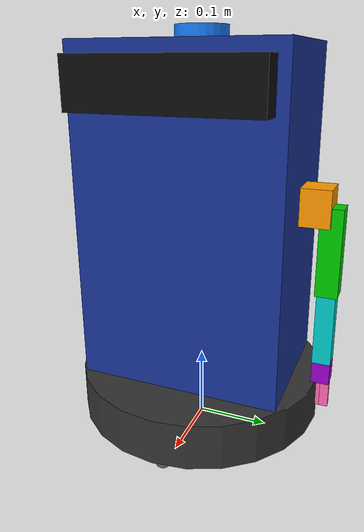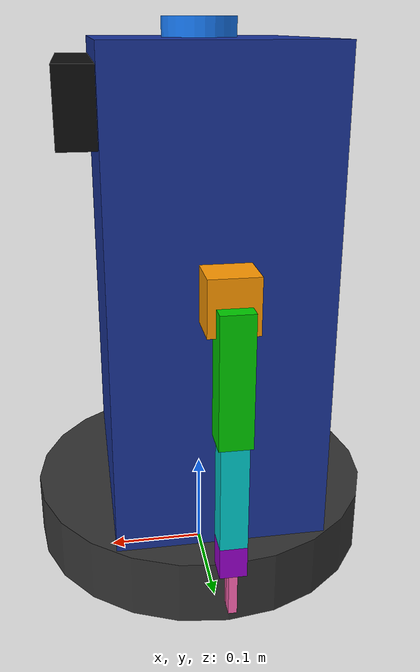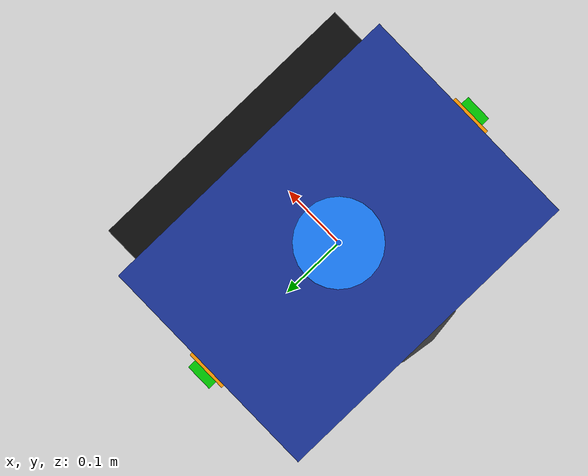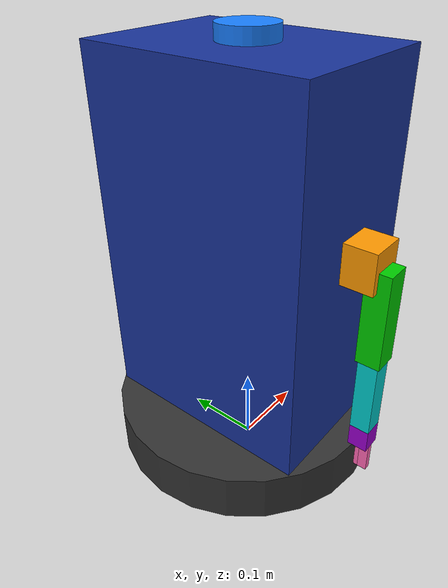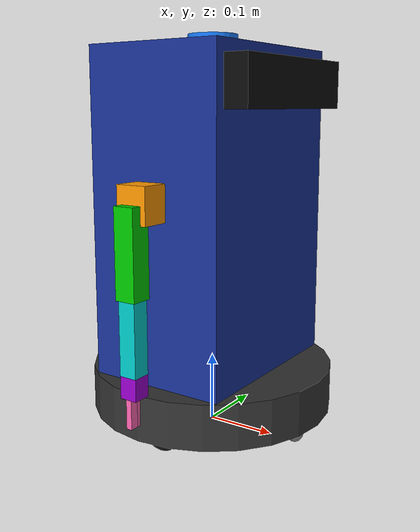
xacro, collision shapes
<?xml version="1.0"?>
<robot name="underbot" xmlns:xacro="http://www.ros.org/wiki/xacro">

  <!-- Include all component files -->
  <xacro:include filename="$(find underbot_description)/urdf/inertias.xacro"/>
  <xacro:include filename="$(find underbot_description)/urdf/base.xacro"/>
  <xacro:include filename="$(find underbot_description)/urdf/arm.xacro"/>
  <xacro:include filename="$(find underbot_description)/urdf/sensors.xacro"/>

  <!-- Instantiation of the Left Arm (reflect=1) -->
  <xacro:underbot_arm prefix="l_" reflect="1" />

  <!-- Instantiation of the Right Arm (reflect=-1) -->
  <xacro:underbot_arm prefix="r_" reflect="-1" />

</robot>

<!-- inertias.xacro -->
<robot xmlns:xacro="http://www.ros.org/wiki/xacro">

  <!-- INERTIA MACROS (Compliant with Isaac Sim / PhysX)          -->

  <xacro:macro name="box_inertia" params="m x y z">
    <inertial>
      <mass value="${m}"/>
      <inertia ixx="${(m/12.0) * (y*y + z*z)}" ixy="0.0" ixz="0.0"
               iyy="${(m/12.0) * (x*x + z*z)}" iyz="0.0"
               izz="${(m/12.0) * (x*x + y*y)}"/>
    </inertial>
  </xacro:macro>

  <xacro:macro name="cylinder_inertia" params="m r h">
    <inertial>
      <mass value="${m}"/>
      <inertia ixx="${(m/12.0) * (3*r*r + h*h)}" ixy="0.0" ixz="0.0"
               iyy="${(m/12.0) * (3*r*r + h*h)}" iyz="0.0"
               izz="${0.5 * m * r*r}"/>
    </inertial>
  </xacro:macro>

  <!-- Drive wheel inertia (cylinder aligned along Y axis) -->
  <xacro:macro name="wheel_inertia" params="m r h">
    <inertial>
      <mass value="${m}"/>
      <inertia ixx="${(m/12.0) * (3*r*r + h*h)}" ixy="0.0" ixz="0.0"
               iyy="${0.5 * m * r*r}" iyz="0.0"
               izz="${(m/12.0) * (3*r*r + h*h)}"/>
    </inertial>
  </xacro:macro>

  <xacro:macro name="sphere_inertia" params="m r">
    <inertial>
      <mass value="${m}"/>
      <inertia ixx="${0.4 * m * r*r}" ixy="0.0" ixz="0.0"
               iyy="${0.4 * m * r*r}" iyz="0.0"
               izz="${0.4 * m * r*r}"/>
    </inertial>
  </xacro:macro>

</robot>

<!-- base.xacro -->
<robot xmlns:xacro="http://www.ros.org/wiki/xacro">

  <!-- Materials -->
  <material name="dark_grey"><color rgba="0.2 0.2 0.2 1.0"/></material>
  <material name="blue"><color rgba="0.1 0.2 0.6 1.0"/></material>
  <material name="black"><color rgba="0.05 0.05 0.05 1.0"/></material>
  <material name="grey"><color rgba="0.5 0.5 0.5 1.0"/></material>

  <link name="base_footprint"/>

  <joint name="base_footprint_joint" type="fixed">
    <parent link="base_footprint"/>
    <child link="base_link"/>
    <origin xyz="0 0 0.0325" rpy="0 0 0"/>
  </joint>

  <!-- ================= BASE (Xiaomi T12) ================= -->
  <link name="base_link">
    <visual>
      <origin xyz="0 0 0.0315" rpy="0 0 0"/>
      <!-- VISUALLY ACCURATE MESH -->
      <geometry><mesh filename="package://underbot_description/meshes/base.stl"/></geometry>
      <material name="dark_grey"/>
    </visual>
    <collision>
      <origin xyz="0 0 0.0315" rpy="0 0 0"/>
      <!-- INVISIBLE SIMPLE COLLISION FOR PERFECT PHYSICS -->
      <geometry><cylinder radius="0.175" length="0.063"/></geometry>
    </collision>
    <xacro:cylinder_inertia m="3.6" r="0.175" h="0.063"/>
  </link>

  <!-- ================= WHEELS ================= -->
  <link name="left_wheel">
    <visual>
      <origin xyz="0 0 0" rpy="${pi/2} 0 0"/>
      <geometry><mesh filename="package://underbot_description/meshes/wheel.stl"/></geometry>
      <material name="black"/>
    </visual>
    <collision>
      <origin xyz="0 0 0" rpy="${pi/2} 0 0"/>
      <geometry><cylinder radius="0.0325" length="0.016"/></geometry>
    </collision>
    <xacro:wheel_inertia m="0.15" r="0.0325" h="0.016"/>
  </link>
  <joint name="left_wheel_joint" type="continuous">
    <parent link="base_link"/>
    <child link="left_wheel"/>
    <origin xyz="0 0.120 0" rpy="0 0 0"/>
    <axis xyz="0 1 0"/>
    <dynamics damping="0.1" friction="0.05"/>
  </joint>

  <link name="right_wheel">
    <visual>
      <origin xyz="0 0 0" rpy="${pi/2} 0 0"/>
      <geometry><mesh filename="package://underbot_description/meshes/wheel.stl"/></geometry>
      <material name="black"/>
    </visual>
    <collision>
      <origin xyz="0 0 0" rpy="${pi/2} 0 0"/>
      <geometry><cylinder radius="0.0325" length="0.016"/></geometry>
    </collision>
    <xacro:wheel_inertia m="0.15" r="0.0325" h="0.016"/>
  </link>
  <joint name="right_wheel_joint" type="continuous">
    <parent link="base_link"/>
    <child link="right_wheel"/>
    <origin xyz="0 -0.120 0" rpy="0 0 0"/>
    <axis xyz="0 1 0"/>
    <dynamics damping="0.1" friction="0.05"/>
  </joint>

  <!-- Caster Wheel -->
  <link name="caster_wheel">
    <visual>
      <origin xyz="0 0 0" rpy="0 0 0"/>
      <geometry><sphere radius="0.012"/></geometry>
      <material name="grey"/>
    </visual>
    <collision>
      <origin xyz="0 0 0" rpy="0 0 0"/>
      <geometry><sphere radius="0.012"/></geometry>
    </collision>
    <xacro:sphere_inertia m="0.05" r="0.012"/>
  </link>
  <joint name="caster_wheel_joint" type="fixed">
    <parent link="base_link"/>
    <child link="caster_wheel"/>
    <origin xyz="0.140 0 -0.0205" rpy="0 0 0"/>
  </joint>

  <!-- ================= BODY COLUMN (Torso) ================= -->
  <link name="body_column">
    <visual>
      <origin xyz="0 0 0.225" rpy="0 0 0"/>
      <geometry><mesh filename="package://underbot_description/meshes/body_column.stl"/></geometry>
      <material name="blue"/>
    </visual>
    <collision>
      <origin xyz="0 0 0.225" rpy="0 0 0"/>
      <geometry><box size="0.20 0.28 0.45"/></geometry>
    </collision>
    <inertial>
      <origin xyz="-0.03 0 0.15" rpy="0 0 0"/>
      <mass value="2.0"/>
      <inertia ixx="0.0468" ixy="0.0" ixz="0.0" iyy="0.0404" iyz="0.0" izz="0.0197"/>
    </inertial>
  </link>
  <joint name="body_column_joint" type="fixed">
    <parent link="base_link"/>
    <child link="body_column"/>
    <origin xyz="0 0 0.063" rpy="0 0 0"/>
  </joint>

</robot>

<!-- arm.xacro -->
<robot xmlns:xacro="http://www.ros.org/wiki/xacro">

  <xacro:macro name="underbot_arm" params="prefix reflect">
    <!-- prefix: 'l_' or 'r_', reflect: 1 (left) or -1 (right) -->

    <!-- ================= ARM BASE ================= -->
    <link name="${prefix}arm_base">
      <visual>
        <origin xyz="0 ${reflect * 0.02} 0" rpy="0 0 0"/>
        <geometry><mesh filename="package://underbot_description/meshes/arm_base.stl"/></geometry>
        <material name="orange"><color rgba="1.0 0.6 0.0 1.0"/></material>
      </visual>
      <collision>
        <origin xyz="0 ${reflect * 0.02} 0" rpy="0 0 0"/>
        <geometry><box size="0.045 0.04 0.05"/></geometry>
      </collision>
      <xacro:box_inertia m="0.15" x="0.045" y="0.04" z="0.05"/>
    </link>

    <joint name="${prefix}arm_mount_joint" type="fixed">
      <parent link="body_column"/>
      <child link="${prefix}arm_base"/>
      <origin xyz="0 ${reflect * 0.14} 0.25" rpy="0 0 0"/>
    </joint>

    <!-- ================= UPPER ARM ================= -->
    <link name="${prefix}upper_arm">
      <visual>
        <origin xyz="0 0 -0.06" rpy="0 0 0"/>
        <geometry><mesh filename="package://underbot_description/meshes/upper_arm.stl"/></geometry>
        <material name="green"><color rgba="0.0 0.8 0.0 1.0"/></material>
      </visual>
      <collision>
        <origin xyz="0 0 -0.06" rpy="0 0 0"/>
        <geometry><box size="0.03 0.03 0.12"/></geometry>
      </collision>
      <xacro:box_inertia m="0.12" x="0.03" y="0.03" z="0.12"/>
    </link>

    <joint name="${prefix}shoulder_joint" type="revolute">
      <parent link="${prefix}arm_base"/>
      <child link="${prefix}upper_arm"/>
      <origin xyz="0 ${reflect * 0.04} 0" rpy="0 0 0"/>
      <axis xyz="0 1 0"/>
      <limit lower="-1.87" upper="1.87" effort="8.0" velocity="3.14"/>
      <dynamics damping="2.0" friction="1.0"/>
    </joint>

    <!-- ================= FOREARM ================= -->
    <link name="${prefix}forearm">
      <visual>
        <origin xyz="0 0 -0.05" rpy="0 0 0"/>
        <geometry><mesh filename="package://underbot_description/meshes/forearm.stl"/></geometry>
        <material name="cyan"><color rgba="0.0 0.8 0.8 1.0"/></material>
      </visual>
      <collision>
        <origin xyz="0 0 -0.05" rpy="0 0 0"/>
        <geometry><box size="0.025 0.025 0.10"/></geometry>
      </collision>
      <xacro:box_inertia m="0.10" x="0.025" y="0.025" z="0.10"/>
    </link>

    <joint name="${prefix}elbow_joint" type="revolute">
      <parent link="${prefix}upper_arm"/>
      <child link="${prefix}forearm"/>
      <origin xyz="0 0 -0.12" rpy="0 0 0"/>
      <axis xyz="0 1 0"/>
      <limit lower="-2.11" upper="1.61" effort="6.0" velocity="3.14"/>
      <dynamics damping="1.5" friction="0.8"/>
    </joint>

    <!-- ================= WRIST (Fixed) ================= -->
    <link name="${prefix}wrist">
      <visual>
        <origin xyz="0 0 -0.015" rpy="0 0 0"/>
        <geometry><mesh filename="package://underbot_description/meshes/wrist.stl"/></geometry>
        <material name="purple"><color rgba="0.6 0.0 0.8 1.0"/></material>
      </visual>
      <collision>
        <origin xyz="0 0 -0.015" rpy="0 0 0"/>
        <geometry><box size="0.025 0.025 0.03"/></geometry>
      </collision>
      <xacro:box_inertia m="0.08" x="0.025" y="0.025" z="0.03"/>
    </link>

    <joint name="${prefix}wrist_fixed_joint" type="fixed">
      <parent link="${prefix}forearm"/>
      <child link="${prefix}wrist"/>
      <origin xyz="0 0 -0.10" rpy="0 0 0"/>
    </joint>

    <!-- ================= GRIPPER ================= -->
    <link name="${prefix}gripper_left">
      <visual>
        <origin xyz="0 0 -0.02" rpy="0 0 0"/>
        <geometry><mesh filename="package://underbot_description/meshes/gripper.stl"/></geometry>
        <material name="pink"><color rgba="1.0 0.4 0.7 1.0"/></material>
      </visual>
      <collision>
        <origin xyz="0 0 -0.02" rpy="0 0 0"/>
        <geometry><box size="0.008 0.012 0.04"/></geometry>
      </collision>
      <xacro:box_inertia m="0.03" x="0.008" y="0.012" z="0.04"/>
    </link>

    <link name="${prefix}gripper_right">
      <visual>
        <origin xyz="0 0 -0.02" rpy="0 0 0"/>
        <!-- Reuse the same gripper STL -->
        <geometry><mesh filename="package://underbot_description/meshes/gripper.stl"/></geometry>
        <material name="pink"><color rgba="1.0 0.4 0.7 1.0"/></material>
      </visual>
      <collision>
        <origin xyz="0 0 -0.02" rpy="0 0 0"/>
        <geometry><box size="0.008 0.012 0.04"/></geometry>
      </collision>
      <xacro:box_inertia m="0.03" x="0.008" y="0.012" z="0.04"/>
    </link>

    <joint name="${prefix}finger_left_joint" type="prismatic">
      <parent link="${prefix}wrist"/>
      <child link="${prefix}gripper_left"/>
      <origin xyz="0 0.006 -0.03" rpy="0 0 0"/>
      <axis xyz="0 1 0"/>
      <limit lower="0.0" upper="0.025" effort="30.0" velocity="0.1"/>
      <dynamics damping="0.5" friction="0.2"/>
    </joint>

    <joint name="${prefix}finger_right_joint" type="prismatic">
      <parent link="${prefix}wrist"/>
      <child link="${prefix}gripper_right"/>
      <origin xyz="0 -0.006 -0.03" rpy="0 0 0"/>
      <axis xyz="0 -1 0"/>
      <limit lower="0.0" upper="0.025" effort="30.0" velocity="0.1"/>
      <dynamics damping="0.5" friction="0.2"/>
      <mimic joint="${prefix}finger_left_joint" multiplier="1.0" offset="0.0"/>
    </joint>

  </xacro:macro>

</robot>

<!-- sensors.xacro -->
<robot xmlns:xacro="http://www.ros.org/wiki/xacro">

  <!-- ================= KINECT V2 ================= -->
  <link name="kinect_v2">
    <visual>
      <origin xyz="0 0 0" rpy="0 0 0"/>
      <geometry><mesh filename="package://underbot_description/meshes/kinect_v2.stl"/></geometry>
      <material name="black"/>
    </visual>
    <collision>
      <origin xyz="0 0 0" rpy="0 0 0"/>
      <geometry><box size="0.067 0.249 0.066"/></geometry>
    </collision>
    <xacro:box_inertia m="1.0" x="0.067" y="0.249" z="0.066"/>
  </link>

  <joint name="kinect_joint" type="fixed">
    <parent link="body_column"/>
    <child link="kinect_v2"/>
    <origin xyz="0.10 0 0.40" rpy="0 0 0"/>
  </joint>

  <link name="kinect_optical_frame"/>
  <joint name="kinect_optical_joint" type="fixed">
    <parent link="kinect_v2"/>
    <child link="kinect_optical_frame"/>
    <origin xyz="0.0335 0 0" rpy="${-pi/2} 0 ${-pi/2}"/>
  </joint>

  <!-- ================= LIDAR ================= -->
  <link name="lidar_mount">
    <visual>
      <origin xyz="0 0 0.009" rpy="0 0 0"/>
      <geometry><mesh filename="package://underbot_description/meshes/lidar_mount.stl"/></geometry>
      <material name="blue"><color rgba="0.1 0.5 1.0 1.0"/></material>
    </visual>
    <collision>
      <origin xyz="0 0 0.009" rpy="0 0 0"/>
      <geometry><cylinder radius="0.035" length="0.018"/></geometry>
    </collision>
    <xacro:cylinder_inertia m="0.17" r="0.035" h="0.018"/>
  </link>

  <joint name="lidar_joint" type="fixed">
    <parent link="body_column"/>
    <child link="lidar_mount"/>
    <origin xyz="0 0 0.45" rpy="0 0 0"/>
  </joint>

</robot>
